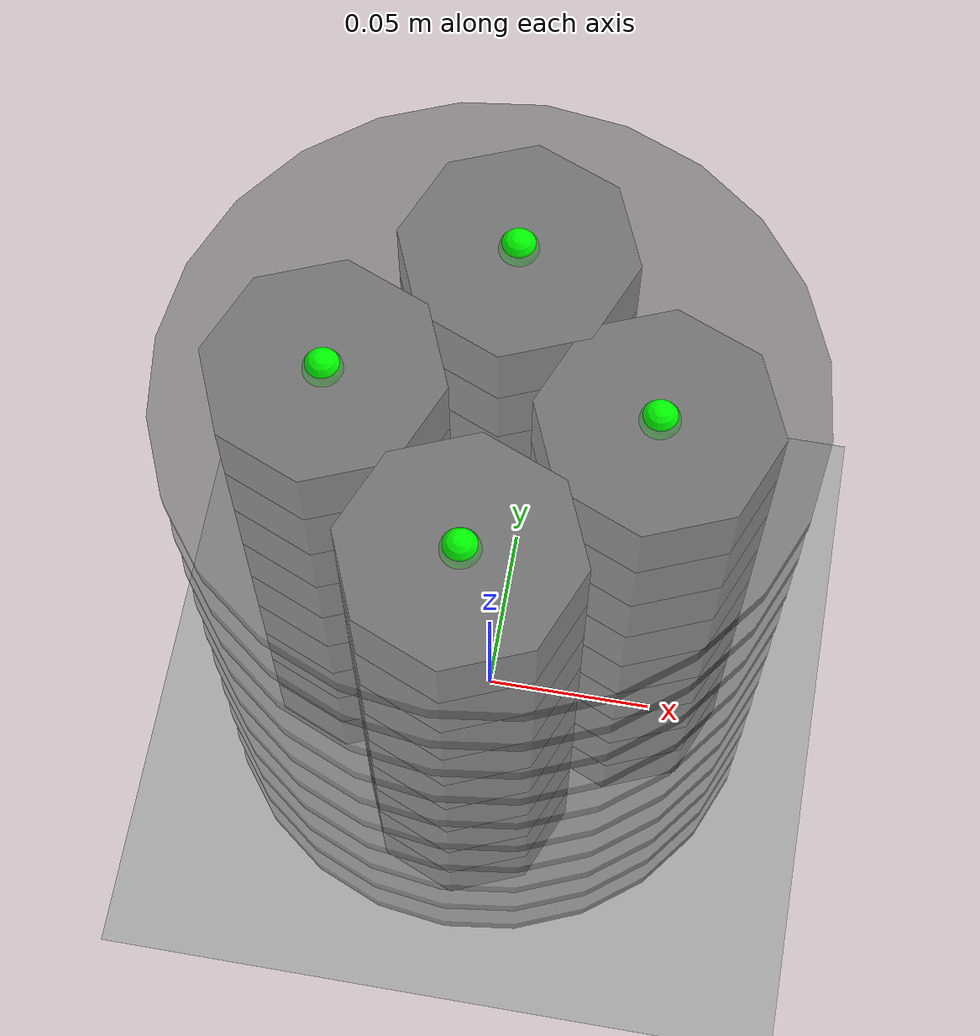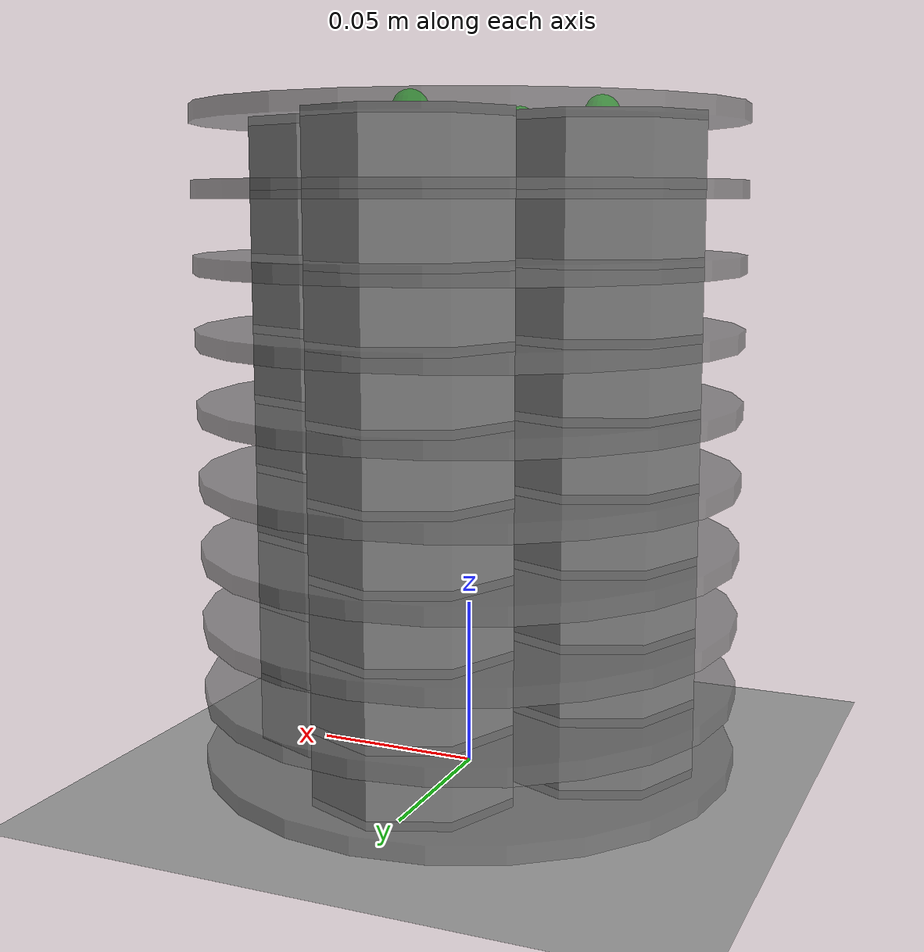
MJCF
<mujoco model="SmallJoint">
  <compiler angle="degree"/>
  <option timestep="0.0050000000000000001" integrator="implicitfast" cone="elliptic" jacobian="sparse" solver="Newton">
    <flag gravity="enable"/>
  </option>
  <size njmax="5000" nconmax="5000" nstack="5000000"/>
  <visual>
    <map stiffness="100" fogstart="10" fogend="15" zfar="40" shadowscale="0.5"/>
    <scale forcewidth="0.10000000000000001" contactwidth="0.074999999999999997" contactheight="0.025000000000000001" framelength="0.59999999999999998" framewidth="0.059999999999999998"/>
  </visual>
  <default>
    <default class="/">
      <default class="small_joint">
        <joint group="3" type="hinge" pos="0 0 0.010526315789473684" limited="false" stiffness="90" damping="0.45000000000000001"/>
        <geom type="cylinder" size="0.080000000000000002 0.002631578947368421" rgba="0.47058823529411764 0.47058823529411764 0.47058823529411764 0.69999999999999996"/>
      </default>
      <default class="bellows_site">
        <site rgba="0 1 0 1"/>
      </default>
      <default class="tendon">
        <tendon width="0.029999999999999999"/>
      </default>
    </default>
  </default>
  <extension>
    <plugin plugin="mujoco.sensor.joint_angle_estimator"/>
  </extension>
  <custom>
    <numeric name="num_disks" size="1" data="10"/>
  </custom>
  <asset>
    <texture name="texplane" type="2d" builtin="checker" mark="cross" width="512" height="512"/>
    <material name="matplane" class="/" texture="texplane" texuniform="true"/>
  </asset>
  <worldbody>
    <geom name="world" class="/" type="plane" condim="1" size="0 0 1" material="matplane"/>
    <light name="//unnamed_light_0" class="/" directional="true" pos="0 0 4" dir="0 0 -1" diffuse="0.59999999999999998 0.59999999999999998 0.59999999999999998" specular="0.20000000000000001 0.20000000000000001 0.20000000000000001"/>
    <camera name="fixedcam" class="/" pos="-1.357 2.722 2.4470000000000001" xyaxes="-0.88200000000000001 -0.47199999999999998 0 0.23799999999999999 -0.44600000000000001 0.86299999999999999"/>
    <body name="left_0_B0" childclass="small_joint" pos="0 0 0.005263157894736842" euler="0 0 0">
      <geom name="left_0_G0" class="small_joint"/>
      <inertial pos="0 0 0" mass="0.1326" diaginertia="0.00021338437673130195 0.00021338437673130195 0.00042432"/>
      <site name="left_0_xsite0" class="bellows_site" pos="0.040000000000000001 0 0"/>
      <site name="left_0_-xsite0" class="bellows_site" pos="-0.040000000000000001 0 0"/>
      <site name="left_0_ysite0" class="bellows_site" pos="0 0.040000000000000001 0"/>
      <site name="left_0_-ysite0" class="bellows_site" pos="0 -0.040000000000000001 0"/>
      <body name="left_0_B1" pos="0 0 0.021052631578947368">
        <geom name="left_0_G1"/>
        <inertial pos="0 0 0" mass="0.1326" diaginertia="0.00021338437673130195 0.00021338437673130195 0.00042432"/>
        <joint name="left_0_Jx_0" pos="0 0 -0.010526315789473684" axis="1 0 0"/>
        <joint name="left_0_Jy_0" pos="0 0 -0.010526315789473684" axis="0 1 0"/>
        <site name="left_0_xsite1" class="bellows_site" pos="0.040000000000000001 0 0"/>
        <site name="left_0_-xsite1" class="bellows_site" pos="-0.040000000000000001 0 0"/>
        <site name="left_0_ysite1" class="bellows_site" pos="0 0.040000000000000001 0"/>
        <site name="left_0_-ysite1" class="bellows_site" pos="0 -0.040000000000000001 0"/>
        <body name="left_0_B2" pos="0 0 0.021052631578947368">
          <geom name="left_0_G2"/>
          <inertial pos="0 0 0" mass="0.1326" diaginertia="0.00021338437673130195 0.00021338437673130195 0.00042432"/>
          <joint name="left_0_Jx_1" pos="0 0 -0.010526315789473684" axis="1 0 0"/>
          <joint name="left_0_Jy_1" pos="0 0 -0.010526315789473684" axis="0 1 0"/>
          <site name="left_0_xsite2" class="bellows_site" pos="0.040000000000000001 0 0"/>
          <site name="left_0_-xsite2" class="bellows_site" pos="-0.040000000000000001 0 0"/>
          <site name="left_0_ysite2" class="bellows_site" pos="0 0.040000000000000001 0"/>
          <site name="left_0_-ysite2" class="bellows_site" pos="0 -0.040000000000000001 0"/>
          <body name="left_0_B3" pos="0 0 0.021052631578947368">
            <geom name="left_0_G3"/>
            <inertial pos="0 0 0" mass="0.1326" diaginertia="0.00021338437673130195 0.00021338437673130195 0.00042432"/>
            <joint name="left_0_Jx_2" pos="0 0 -0.010526315789473684" axis="1 0 0"/>
            <joint name="left_0_Jy_2" pos="0 0 -0.010526315789473684" axis="0 1 0"/>
            <site name="left_0_xsite3" class="bellows_site" pos="0.040000000000000001 0 0"/>
            <site name="left_0_-xsite3" class="bellows_site" pos="-0.040000000000000001 0 0"/>
            <site name="left_0_ysite3" class="bellows_site" pos="0 0.040000000000000001 0"/>
            <site name="left_0_-ysite3" class="bellows_site" pos="0 -0.040000000000000001 0"/>
            <body name="left_0_B4" pos="0 0 0.021052631578947368">
              <geom name="left_0_G4"/>
              <inertial pos="0 0 0" mass="0.1326" diaginertia="0.00021338437673130195 0.00021338437673130195 0.00042432"/>
              <joint name="left_0_Jx_3" pos="0 0 -0.010526315789473684" axis="1 0 0"/>
              <joint name="left_0_Jy_3" pos="0 0 -0.010526315789473684" axis="0 1 0"/>
              <site name="left_0_xsite4" class="bellows_site" pos="0.040000000000000001 0 0"/>
              <site name="left_0_-xsite4" class="bellows_site" pos="-0.040000000000000001 0 0"/>
              <site name="left_0_ysite4" class="bellows_site" pos="0 0.040000000000000001 0"/>
              <site name="left_0_-ysite4" class="bellows_site" pos="0 -0.040000000000000001 0"/>
              <body name="left_0_B5" pos="0 0 0.021052631578947368">
                <geom name="left_0_G5"/>
                <inertial pos="0 0 0" mass="0.1326" diaginertia="0.00021338437673130195 0.00021338437673130195 0.00042432"/>
                <joint name="left_0_Jx_4" pos="0 0 -0.010526315789473684" axis="1 0 0"/>
                <joint name="left_0_Jy_4" pos="0 0 -0.010526315789473684" axis="0 1 0"/>
                <site name="left_0_xsite5" class="bellows_site" pos="0.040000000000000001 0 0"/>
                <site name="left_0_-xsite5" class="bellows_site" pos="-0.040000000000000001 0 0"/>
                <site name="left_0_ysite5" class="bellows_site" pos="0 0.040000000000000001 0"/>
                <site name="left_0_-ysite5" class="bellows_site" pos="0 -0.040000000000000001 0"/>
                <body name="left_0_B6" pos="0 0 0.021052631578947368">
                  <geom name="left_0_G6"/>
                  <inertial pos="0 0 0" mass="0.1326" diaginertia="0.00021338437673130195 0.00021338437673130195 0.00042432"/>
                  <joint name="left_0_Jx_5" pos="0 0 -0.010526315789473684" axis="1 0 0"/>
                  <joint name="left_0_Jy_5" pos="0 0 -0.010526315789473684" axis="0 1 0"/>
                  <site name="left_0_xsite6" class="bellows_site" pos="0.040000000000000001 0 0"/>
                  <site name="left_0_-xsite6" class="bellows_site" pos="-0.040000000000000001 0 0"/>
                  <site name="left_0_ysite6" class="bellows_site" pos="0 0.040000000000000001 0"/>
                  <site name="left_0_-ysite6" class="bellows_site" pos="0 -0.040000000000000001 0"/>
                  <body name="left_0_B7" pos="0 0 0.021052631578947368">
                    <geom name="left_0_G7"/>
                    <inertial pos="0 0 0" mass="0.1326" diaginertia="0.00021338437673130195 0.00021338437673130195 0.00042432"/>
                    <joint name="left_0_Jx_6" pos="0 0 -0.010526315789473684" axis="1 0 0"/>
                    <joint name="left_0_Jy_6" pos="0 0 -0.010526315789473684" axis="0 1 0"/>
                    <site name="left_0_xsite7" class="bellows_site" pos="0.040000000000000001 0 0"/>
                    <site name="left_0_-xsite7" class="bellows_site" pos="-0.040000000000000001 0 0"/>
                    <site name="left_0_ysite7" class="bellows_site" pos="0 0.040000000000000001 0"/>
                    <site name="left_0_-ysite7" class="bellows_site" pos="0 -0.040000000000000001 0"/>
                    <body name="left_0_B8" pos="0 0 0.021052631578947368">
                      <geom name="left_0_G8"/>
                      <inertial pos="0 0 0" mass="0.1326" diaginertia="0.00021338437673130195 0.00021338437673130195 0.00042432"/>
                      <joint name="left_0_Jx_7" pos="0 0 -0.010526315789473684" axis="1 0 0"/>
                      <joint name="left_0_Jy_7" pos="0 0 -0.010526315789473684" axis="0 1 0"/>
                      <site name="left_0_xsite8" class="bellows_site" pos="0.040000000000000001 0 0"/>
                      <site name="left_0_-xsite8" class="bellows_site" pos="-0.040000000000000001 0 0"/>
                      <site name="left_0_ysite8" class="bellows_site" pos="0 0.040000000000000001 0"/>
                      <site name="left_0_-ysite8" class="bellows_site" pos="0 -0.040000000000000001 0"/>
                      <body name="left_0_B9" pos="0 0 0.021052631578947368">
                        <geom name="left_0_G9"/>
                        <inertial pos="0 0 0" mass="0.1326" diaginertia="0.00021338437673130195 0.00021338437673130195 0.00042432"/>
                        <joint name="left_0_Jx_8" pos="0 0 -0.010526315789473684" axis="1 0 0"/>
                        <joint name="left_0_Jy_8" pos="0 0 -0.010526315789473684" axis="0 1 0"/>
                        <site name="left_0_xsite9" class="bellows_site" pos="0.040000000000000001 0 0"/>
                        <site name="left_0_-xsite9" class="bellows_site" pos="-0.040000000000000001 0 0"/>
                        <site name="left_0_ysite9" class="bellows_site" pos="0 0.040000000000000001 0"/>
                        <site name="left_0_-ysite9" class="bellows_site" pos="0 -0.040000000000000001 0"/>
                      </body>
                    </body>
                  </body>
                </body>
              </body>
            </body>
          </body>
        </body>
      </body>
    </body>
  </worldbody>
  <tendon>
    <spatial name="bellows0" class="tendon">
      <site site="left_0_ysite0"/>
      <site site="left_0_ysite1"/>
      <site site="left_0_ysite2"/>
      <site site="left_0_ysite3"/>
      <site site="left_0_ysite4"/>
      <site site="left_0_ysite5"/>
      <site site="left_0_ysite6"/>
      <site site="left_0_ysite7"/>
      <site site="left_0_ysite8"/>
      <site site="left_0_ysite9"/>
    </spatial>
    <spatial name="bellows1" class="tendon">
      <site site="left_0_-ysite0"/>
      <site site="left_0_-ysite1"/>
      <site site="left_0_-ysite2"/>
      <site site="left_0_-ysite3"/>
      <site site="left_0_-ysite4"/>
      <site site="left_0_-ysite5"/>
      <site site="left_0_-ysite6"/>
      <site site="left_0_-ysite7"/>
      <site site="left_0_-ysite8"/>
      <site site="left_0_-ysite9"/>
    </spatial>
    <spatial name="bellows2" class="tendon">
      <site site="left_0_-xsite0"/>
      <site site="left_0_-xsite1"/>
      <site site="left_0_-xsite2"/>
      <site site="left_0_-xsite3"/>
      <site site="left_0_-xsite4"/>
      <site site="left_0_-xsite5"/>
      <site site="left_0_-xsite6"/>
      <site site="left_0_-xsite7"/>
      <site site="left_0_-xsite8"/>
      <site site="left_0_-xsite9"/>
    </spatial>
    <spatial name="bellows3" class="tendon">
      <site site="left_0_xsite0"/>
      <site site="left_0_xsite1"/>
      <site site="left_0_xsite2"/>
      <site site="left_0_xsite3"/>
      <site site="left_0_xsite4"/>
      <site site="left_0_xsite5"/>
      <site site="left_0_xsite6"/>
      <site site="left_0_xsite7"/>
      <site site="left_0_xsite8"/>
      <site site="left_0_xsite9"/>
    </spatial>
  </tendon>
  <actuator>
    <cylinder name="p0" class="/" ctrllimited="true" ctrlrange="0 400" gear="500" tendon="bellows0" timeconst="0.20000000000000001" diameter="0.050000000000000003"/>
    <cylinder name="p1" class="/" ctrllimited="true" ctrlrange="0 400" gear="500" tendon="bellows1" timeconst="0.20000000000000001" diameter="0.050000000000000003"/>
    <cylinder name="p2" class="/" ctrllimited="true" ctrlrange="0 400" gear="500" tendon="bellows2" timeconst="0.20000000000000001" diameter="0.050000000000000003"/>
    <cylinder name="p3" class="/" ctrllimited="true" ctrlrange="0 400" gear="500" tendon="bellows3" timeconst="0.20000000000000001" diameter="0.050000000000000003"/>
  </actuator>
  <sensor>
    <framequat name="left_0_B0_framequat" objtype="body" objname="left_0_B0"/>
    <framequat name="left_0_B9_framequat" objtype="body" objname="left_0_B9"/>
    <frameangvel name="left_0_B9_frameangvel" objtype="body" objname="left_0_B9" reftype="body" refname="left_0_B0"/>
    <plugin name="left_0" plugin="mujoco.sensor.joint_angle_estimator"/>
  </sensor>
</mujoco>
